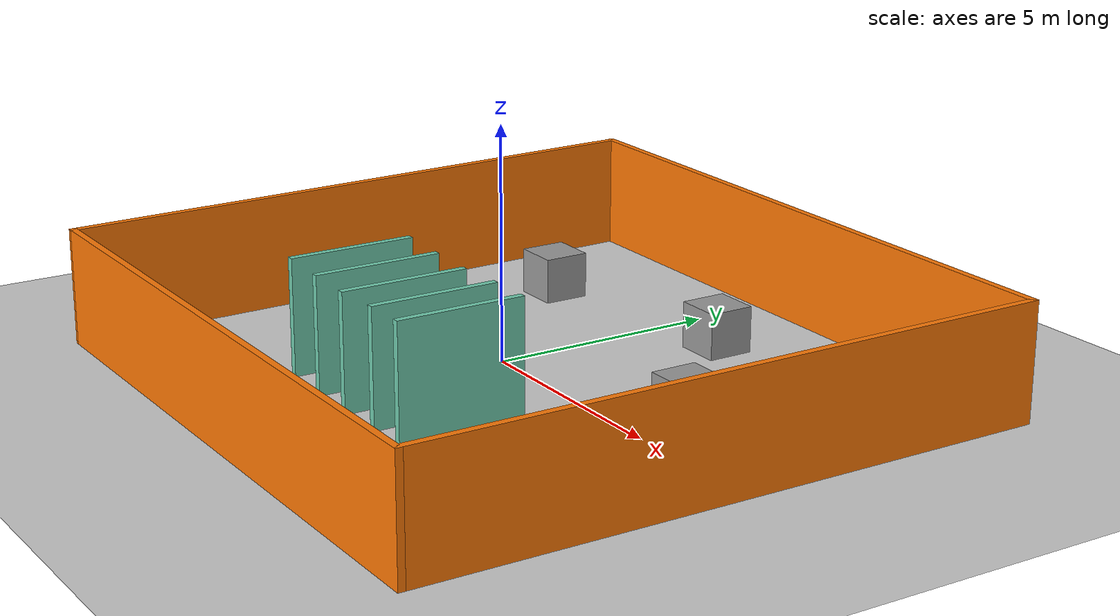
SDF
<sdf version="1.7">
 <world name="default">
  <light name="sun" type="directional">
   <pose>0 0 10 0 -0 0</pose>
   <diffuse>0.8 0.8 0.8 1</diffuse>
   <specular>0.2 0.2 0.2 1</specular>
   <attenuation>
    <range>1000</range>
    <constant>0.9</constant>
    <linear>0.01</linear>
    <quadratic>0.001</quadratic>
   </attenuation>
   <direction>-0.5 0.1 -0.9</direction>
   <spot><inner_angle>0</inner_angle><outer_angle>0</outer_angle><falloff>0</falloff></spot>
  </light>
  <model name="ground_plane">
   <static>1</static>
   <link name="link">
    <collision name="collision">
     <geometry><plane><normal>0 0 1</normal><size>100 100</size></plane></geometry>
     <surface><friction><ode><mu>100</mu><mu2>50</mu2></ode></friction></surface>
    </collision>
    <visual name="visual">
     <cast_shadows>0</cast_shadows>
     <geometry><plane><normal>0 0 1</normal><size>100 100</size></plane></geometry>
     <material>
      <script><uri>file://media/materials/scripts/gazebo.material</uri><name>Gazebo/Grey</name></script>
     </material>
    </visual>
   </link>
  </model>
  <gravity>0 0 -9.8</gravity>
  <magnetic_field>6e-06 2.3e-05 -4.2e-05</magnetic_field>
  <atmosphere type="adiabatic"/>
  <physics type="ode">
   <max_step_size>0.001</max_step_size>
   <real_time_factor>1</real_time_factor>
   <real_time_update_rate>1000</real_time_update_rate>
  </physics>
  <scene><ambient>0.4 0.4 0.4 1</ambient><background>0.7 0.7 0.7 1</background><shadows>1</shadows></scene>
  <spherical_coordinates>
   <surface_model>EARTH_WGS84</surface_model>
   <latitude_deg>0</latitude_deg>
   <longitude_deg>0</longitude_deg>
   <elevation>0</elevation>
   <heading_deg>0</heading_deg>
  </spherical_coordinates>
  <model name="Untitled">
   <pose>1.17064 -0.136826 0 0 -0 0</pose>
   <link name="Wall_0">
    <collision name="Wall_0_Collision">
     <geometry><box><size>2.75 0.15 2.5</size></box></geometry>
     <pose>0 0 1.25 0 -0 0</pose>
    </collision>
    <visual name="Wall_0_Visual">
     <pose>0 0 1.25 0 -0 0</pose>
     <geometry><box><size>2.75 0.15 2.5</size></box></geometry>
     <material>
      <script><uri>file://media/materials/scripts/gazebo.material</uri><name>Gazebo/Grey</name></script>
      <ambient>0.435294 0.796078 0.67451 1</ambient>
     </material>
     <meta><layer>0</layer></meta>
    </visual>
    <pose>-0.280644 -2.62317 0 0 -0 -1.5708</pose>
   </link>
   <link name="Wall_11">
    <collision name="Wall_11_Collision">
     <geometry><box><size>14.25 0.15 2.5</size></box></geometry>
     <pose>0 0 1.25 0 -0 0</pose>
    </collision>
    <visual name="Wall_11_Visual">
     <pose>0 0 1.25 0 -0 0</pose>
     <geometry><box><size>14.25 0.15 2.5</size></box></geometry>
     <material>
      <script><uri>file://media/materials/scripts/gazebo.material</uri><name>Gazebo/Grey</name></script>
      <ambient>0.996078 0.47451 0.0196078 1</ambient>
     </material>
     <meta><layer>0</layer></meta>
    </visual>
    <pose>0.000682 6.8 0 0 -0 0</pose>
   </link>
   <link name="Wall_12">
    <collision name="Wall_12_Collision">
     <geometry><box><size>13.75 0.15 2.5</size></box></geometry>
     <pose>0 0 1.25 0 -0 0</pose>
    </collision>
    <visual name="Wall_12_Visual">
     <pose>0 0 1.25 0 -0 0</pose>
     <geometry><box><size>13.75 0.15 2.5</size></box></geometry>
     <material>
      <script><uri>file://media/materials/scripts/gazebo.material</uri><name>Gazebo/Grey</name></script>
      <ambient>0.996078 0.47451 0.0196078 1</ambient>
     </material>
     <meta><layer>0</layer></meta>
    </visual>
    <pose>7.05068 0 0 0 -0 -1.5708</pose>
   </link>
   <link name="Wall_13">
    <collision name="Wall_13_Collision">
     <geometry><box><size>14 0.15 2.5</size></box></geometry>
     <pose>0 0 1.25 0 -0 0</pose>
    </collision>
    <visual name="Wall_13_Visual">
     <pose>0 0 1.25 0 -0 0</pose>
     <geometry><box><size>14 0.15 2.5</size></box></geometry>
     <material>
      <script><uri>file://media/materials/scripts/gazebo.material</uri><name>Gazebo/Grey</name></script>
      <ambient>0.996078 0.47451 0.0196078 1</ambient>
     </material>
     <meta><layer>0</layer></meta>
    </visual>
    <pose>0.125682 -6.8 0 0 -0 3.14159</pose>
   </link>
   <link name="Wall_14">
    <collision name="Wall_14_Collision">
     <geometry><box><size>13.7523 0.15 2.5</size></box></geometry>
     <pose>0 0 1.25 0 -0 0</pose>
    </collision>
    <visual name="Wall_14_Visual">
     <pose>0 0 1.25 0 -0 0</pose>
     <geometry><box><size>13.7523 0.15 2.5</size></box></geometry>
     <material>
      <script><uri>file://media/materials/scripts/gazebo.material</uri><name>Gazebo/Grey</name></script>
      <ambient>0.996078 0.47451 0.0196078 1</ambient>
     </material>
     <meta><layer>0</layer></meta>
    </visual>
    <pose>-6.92432 0 0 0 -0 1.58918</pose>
   </link>
   <link name="Wall_2">
    <collision name="Wall_2_Collision">
     <geometry><box><size>2.75 0.15 2.5</size></box></geometry>
     <pose>0 0 1.25 0 -0 0</pose>
    </collision>
    <visual name="Wall_2_Visual">
     <pose>0 0 1.25 0 -0 0</pose>
     <geometry><box><size>2.75 0.15 2.5</size></box></geometry>
     <material>
      <script><uri>file://media/materials/scripts/gazebo.material</uri><name>Gazebo/Grey</name></script>
      <ambient>0.435294 0.796078 0.67451 1</ambient>
     </material>
     <meta><layer>0</layer></meta>
    </visual>
    <pose>0.769356 -2.55317 0 0 -0 -1.5708</pose>
   </link>
   <link name="Wall_4">
    <collision name="Wall_4_Collision">
     <geometry><box><size>2.75 0.15 2.5</size></box></geometry>
     <pose>0 0 1.25 0 -0 0</pose>
    </collision>
    <visual name="Wall_4_Visual">
     <pose>0 0 1.25 0 -0 0</pose>
     <geometry><box><size>2.75 0.15 2.5</size></box></geometry>
     <material>
      <script><uri>file://media/materials/scripts/gazebo.material</uri><name>Gazebo/Grey</name></script>
      <ambient>0.435294 0.796078 0.67451 1</ambient>
     </material>
     <meta><layer>0</layer></meta>
    </visual>
    <pose>1.73936 -2.54317 0 0 -0 -1.5708</pose>
   </link>
   <link name="Wall_6">
    <collision name="Wall_6_Collision">
     <geometry><box><size>2.75 0.15 2.5</size></box></geometry>
     <pose>0 0 1.25 0 -0 0</pose>
    </collision>
    <visual name="Wall_6_Visual">
     <pose>0 0 1.25 0 -0 0</pose>
     <geometry><box><size>2.75 0.15 2.5</size></box></geometry>
     <material>
      <script><uri>file://media/materials/scripts/gazebo.material</uri><name>Gazebo/Grey</name></script>
      <ambient>0.435294 0.796078 0.67451 1</ambient>
     </material>
     <meta><layer>0</layer></meta>
    </visual>
    <pose>-1.44064 -2.58317 0 0 -0 -1.5708</pose>
   </link>
   <link name="Wall_9">
    <collision name="Wall_9_Collision">
     <geometry><box><size>2.75 0.15 2.5</size></box></geometry>
     <pose>0 0 1.25 0 -0 0</pose>
    </collision>
    <visual name="Wall_9_Visual">
     <pose>0 0 1.25 0 -0 0</pose>
     <geometry><box><size>2.75 0.15 2.5</size></box></geometry>
     <material>
      <script><uri>file://media/materials/scripts/gazebo.material</uri><name>Gazebo/Grey</name></script>
      <ambient>0.435294 0.796078 0.67451 1</ambient>
     </material>
     <meta><layer>0</layer></meta>
    </visual>
    <pose>-2.67064 -2.50317 0 0 -0 -1.5708</pose>
   </link>
   <static>1</static>
  </model>
  <model name="unit_box">
   <pose>1.74592 4.16983 0.499995 0 1e-05 0</pose>
   <link name="link">
    <inertial>
     <mass>1</mass>
     <inertia>
      <ixx>0.166667</ixx>
      <ixy>0</ixy>
      <ixz>0</ixz>
      <iyy>0.166667</iyy>
      <iyz>0</iyz>
      <izz>0.166667</izz>
     </inertia>
    </inertial>
    <collision name="collision"><geometry><box><size>1 1 1</size></box></geometry></collision>
    <visual name="visual">
     <geometry><box><size>1 1 1</size></box></geometry>
     <material>
      <script><name>Gazebo/Grey</name><uri>file://media/materials/scripts/gazebo.material</uri></script>
     </material>
    </visual>
   </link>
  </model>
  <model name="unit_box_0">
   <pose>4.83301 1.19989 0.499995 -1e-05 -0 -0</pose>
   <link name="link">
    <inertial>
     <mass>1</mass>
     <inertia>
      <ixx>0.166667</ixx>
      <ixy>0</ixy>
      <ixz>0</ixz>
      <iyy>0.166667</iyy>
      <iyz>0</iyz>
      <izz>0.166667</izz>
     </inertia>
    </inertial>
    <collision name="collision"><geometry><box><size>1 1 1</size></box></geometry></collision>
    <visual name="visual">
     <geometry><box><size>1 1 1</size></box></geometry>
     <material>
      <script><name>Gazebo/Grey</name><uri>file://media/materials/scripts/gazebo.material</uri></script>
     </material>
    </visual>
   </link>
  </model>
  <model name="unit_box_1">
   <pose>-3.14553 3.29478 0.499995 0 1e-05 0</pose>
   <link name="link">
    <inertial>
     <mass>1</mass>
     <inertia>
      <ixx>0.166667</ixx>
      <ixy>0</ixy>
      <ixz>0</ixz>
      <iyy>0.166667</iyy>
      <iyz>0</iyz>
      <izz>0.166667</izz>
     </inertia>
    </inertial>
    <collision name="collision"><geometry><box><size>1 1 1</size></box></geometry></collision>
    <visual name="visual">
     <geometry><box><size>1 1 1</size></box></geometry>
     <material>
      <script><name>Gazebo/Grey</name><uri>file://media/materials/scripts/gazebo.material</uri></script>
     </material>
    </visual>
   </link>
  </model>
 </world>
</sdf>
